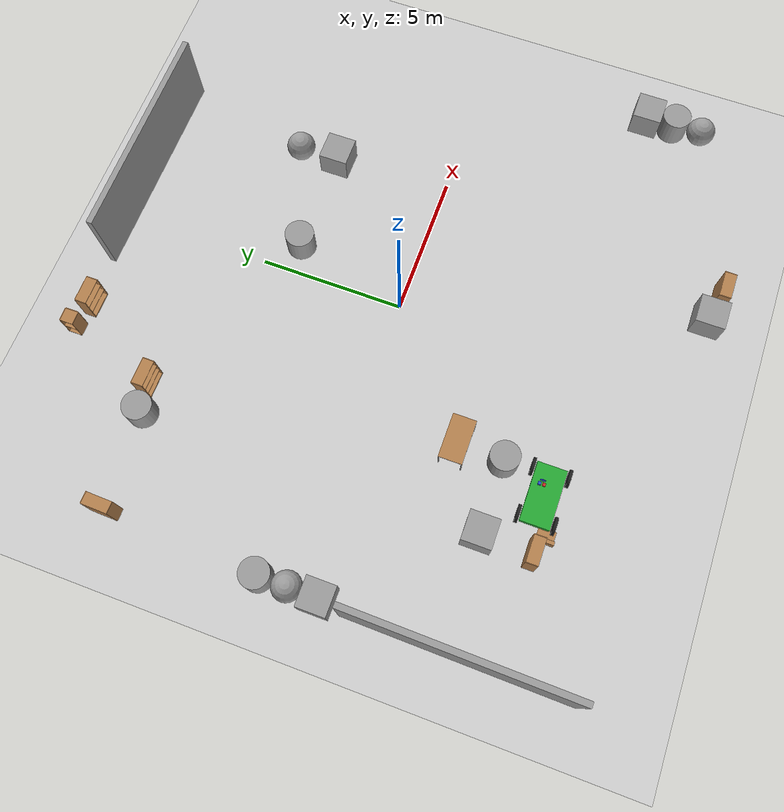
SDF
<sdf version="1.4">
 <world name="default">
  <light name="sun" type="directional">
   <pose>0 0 10 0 -0 0</pose>
   <diffuse>0.8 0.8 0.8 1</diffuse>
   <specular>0.2 0.2 0.2 1</specular>
   <attenuation>
    <range>1000</range>
    <constant>0.9</constant>
    <linear>0.01</linear>
    <quadratic>0.001</quadratic>
   </attenuation>
   <direction>-0.5 0.1 -0.9</direction>
  </light>
  <model name="ground_plane">
   <static>1</static>
   <link name="link">
    <collision name="collision">
     <geometry><plane><normal>0 0 1</normal><size>100 100</size></plane></geometry>
     <surface><friction><ode><mu>100</mu><mu2>50</mu2></ode></friction></surface>
    </collision>
    <visual name="visual">
     <cast_shadows>0</cast_shadows>
     <geometry><plane><normal>0 0 1</normal><size>100 100</size></plane></geometry>
     <material>
      <script><uri>file://media/materials/scripts/gazebo.material</uri><name>Gazebo/Grey</name></script>
     </material>
    </visual>
    <velocity_decay><linear>0</linear><angular>0</angular></velocity_decay>
   </link>
  </model>
  <physics type="ode">
   <max_step_size>0.001</max_step_size>
   <real_time_factor>1</real_time_factor>
   <real_time_update_rate>1000</real_time_update_rate>
   <gravity>0 0 -9.8</gravity>
  </physics>
  <scene><ambient>0.4 0.4 0.4 1</ambient><background>0.7 0.7 0.7 1</background><shadows>1</shadows></scene>
  <spherical_coordinates>
   <surface_model>EARTH_WGS84</surface_model>
   <latitude_deg>0</latitude_deg>
   <longitude_deg>0</longitude_deg>
   <elevation>0</elevation>
   <heading_deg>0</heading_deg>
  </spherical_coordinates>
  <model name="unit_box_1">
   <pose>3 -10 0.5 0 -0 0</pose>
   <link name="link">
    <inertial>
     <mass>1</mass>
     <inertia><ixx>1</ixx><ixy>0</ixy><ixz>0</ixz><iyy>1</iyy><iyz>0</iyz><izz>1</izz></inertia>
    </inertial>
    <collision name="collision"><geometry><box><size>1 1 1</size></box></geometry></collision>
    <visual name="visual">
     <geometry><box><size>1 1 1</size></box></geometry>
     <material>
      <script><uri>file://media/materials/scripts/gazebo.material</uri><name>Gazebo/Grey</name></script>
     </material>
    </visual>
    <velocity_decay><linear>0</linear><angular>0</angular></velocity_decay>
   </link>
   <static>0</static>
  </model>
  <model name="bookshelf">
   <static>1</static>
   <link name="link">
    <inertial><mass>1</mass></inertial>
    <collision name="back">
     <pose>0 0.005 0.6 0 -0 0</pose>
     <geometry><box><size>0.9 0.01 1.2</size></box></geometry>
    </collision>
    <visual name="visual1">
     <pose>0 0.005 0.6 0 -0 0</pose>
     <geometry><box><size>0.9 0.01 1.2</size></box></geometry>
     <material>
      <script><uri>file://media/materials/scripts/gazebo.material</uri><name>Gazebo/Wood</name></script>
     </material>
    </visual>
    <collision name="left_side">
     <pose>0.45 -0.195 0.6 0 -0 0</pose>
     <geometry><box><size>0.02 0.4 1.2</size></box></geometry>
    </collision>
    <visual name="visual2">
     <pose>0.45 -0.195 0.6 0 -0 0</pose>
     <geometry><box><size>0.02 0.4 1.2</size></box></geometry>
     <material>
      <script><uri>file://media/materials/scripts/gazebo.material</uri><name>Gazebo/Wood</name></script>
     </material>
    </visual>
    <collision name="right_side">
     <pose>-0.45 -0.195 0.6 0 -0 0</pose>
     <geometry><box><size>0.02 0.4 1.2</size></box></geometry>
    </collision>
    <visual name="visual3">
     <pose>-0.45 -0.195 0.6 0 -0 0</pose>
     <geometry><box><size>0.02 0.4 1.2</size></box></geometry>
     <material>
      <script><uri>file://media/materials/scripts/gazebo.material</uri><name>Gazebo/Wood</name></script>
     </material>
    </visual>
    <collision name="bottom">
     <pose>0 -0.195 0.03 0 -0 0</pose>
     <geometry><box><size>0.88 0.4 0.06</size></box></geometry>
    </collision>
    <visual name="visual4">
     <pose>0 -0.195 0.03 0 -0 0</pose>
     <geometry><box><size>0.88 0.4 0.06</size></box></geometry>
     <material>
      <script><uri>file://media/materials/scripts/gazebo.material</uri><name>Gazebo/Wood</name></script>
     </material>
    </visual>
    <collision name="top">
     <pose>0 -0.195 1.19 0 -0 0</pose>
     <geometry><box><size>0.88 0.4 0.02</size></box></geometry>
    </collision>
    <visual name="visual5">
     <pose>0 -0.195 1.19 0 -0 0</pose>
     <geometry><box><size>0.88 0.4 0.02</size></box></geometry>
     <material>
      <script><uri>file://media/materials/scripts/gazebo.material</uri><name>Gazebo/Wood</name></script>
     </material>
    </visual>
    <collision name="low_shelf">
     <pose>0 -0.195 0.43 0 -0 0</pose>
     <geometry><box><size>0.88 0.4 0.02</size></box></geometry>
    </collision>
    <visual name="visual6">
     <pose>0 -0.195 0.43 0 -0 0</pose>
     <geometry><box><size>0.88 0.4 0.02</size></box></geometry>
     <material>
      <script><uri>file://media/materials/scripts/gazebo.material</uri><name>Gazebo/Wood</name></script>
     </material>
    </visual>
    <collision name="high_shelf">
     <pose>0 -0.195 0.8 0 -0 0</pose>
     <geometry><box><size>0.88 0.4 0.02</size></box></geometry>
    </collision>
    <visual name="visual7">
     <pose>0 -0.195 0.8 0 -0 0</pose>
     <geometry><box><size>0.88 0.4 0.02</size></box></geometry>
     <material>
      <script><uri>file://media/materials/scripts/gazebo.material</uri><name>Gazebo/Wood</name></script>
     </material>
    </visual>
    <velocity_decay><linear>0</linear><angular>0</angular></velocity_decay>
   </link>
   <pose>4 -10 0 0 -0 0</pose>
  </model>
  <model name="unit_sphere_1">
   <pose>9.99986 -8.00047 0.5 0.000941 -0.000277 0.000347</pose>
   <link name="link">
    <inertial>
     <mass>1</mass>
     <inertia><ixx>1</ixx><ixy>0</ixy><ixz>0</ixz><iyy>1</iyy><iyz>0</iyz><izz>1</izz></inertia>
    </inertial>
    <collision name="collision"><geometry><sphere><radius>0.5</radius></sphere></geometry></collision>
    <visual name="visual">
     <geometry><sphere><radius>0.5</radius></sphere></geometry>
     <material>
      <script><uri>file://media/materials/scripts/gazebo.material</uri><name>Gazebo/Grey</name></script>
     </material>
    </visual>
    <velocity_decay><linear>0</linear><angular>0</angular></velocity_decay>
   </link>
   <static>0</static>
  </model>
  <model name="unit_cylinder_1">
   <pose>10 -7.00001 0.499991 -1e-06 1e-06 0</pose>
   <link name="link">
    <inertial>
     <mass>1</mass>
     <inertia><ixx>1</ixx><ixy>0</ixy><ixz>0</ixz><iyy>1</iyy><iyz>0</iyz><izz>1</izz></inertia>
    </inertial>
    <collision name="collision">
     <geometry><cylinder><radius>0.5</radius><length>1</length></cylinder></geometry>
    </collision>
    <visual name="visual">
     <geometry><cylinder><radius>0.5</radius><length>1</length></cylinder></geometry>
     <material>
      <script><uri>file://media/materials/scripts/gazebo.material</uri><name>Gazebo/Grey</name></script>
     </material>
    </visual>
    <velocity_decay><linear>0</linear><angular>0</angular></velocity_decay>
   </link>
   <static>0</static>
  </model>
  <model name="unit_box_2">
   <pose>10 -6 0.5 0 -0 0</pose>
   <link name="link">
    <inertial>
     <mass>1</mass>
     <inertia><ixx>1</ixx><ixy>0</ixy><ixz>0</ixz><iyy>1</iyy><iyz>0</iyz><izz>1</izz></inertia>
    </inertial>
    <collision name="collision"><geometry><box><size>1 1 1</size></box></geometry></collision>
    <visual name="visual">
     <geometry><box><size>1 1 1</size></box></geometry>
     <material>
      <script><uri>file://media/materials/scripts/gazebo.material</uri><name>Gazebo/Grey</name></script>
     </material>
    </visual>
    <velocity_decay><linear>0</linear><angular>0</angular></velocity_decay>
   </link>
   <static>0</static>
  </model>
  <model name="grey_wall">
   <static>1</static>
   <link name="link">
    <pose>0 0 1.4 0 -0 0</pose>
    <collision name="collision"><geometry><box><size>7.5 0.2 2.8</size></box></geometry></collision>
    <visual name="visual">
     <cast_shadows>0</cast_shadows>
     <geometry><box><size>7.5 0.2 2.8</size></box></geometry>
     <material>
      <script>
       <uri>model://grey_wall/materials/scripts</uri>
       <uri>model://grey_wall/materials/textures</uri>
       <name>vrc/grey_wall</name>
      </script>
     </material>
    </visual>
    <velocity_decay><linear>0</linear><angular>0</angular></velocity_decay>
   </link>
   <pose>2 10 0 0 -0 0</pose>
  </model>
  <model name="bookshelf_0">
   <static>1</static>
   <link name="link">
    <inertial><mass>1</mass></inertial>
    <collision name="back">
     <pose>0 0.005 0.6 0 -0 0</pose>
     <geometry><box><size>0.9 0.01 1.2</size></box></geometry>
    </collision>
    <visual name="visual1">
     <pose>0 0.005 0.6 0 -0 0</pose>
     <geometry><box><size>0.9 0.01 1.2</size></box></geometry>
     <material>
      <script><uri>file://media/materials/scripts/gazebo.material</uri><name>Gazebo/Wood</name></script>
     </material>
    </visual>
    <collision name="left_side">
     <pose>0.45 -0.195 0.6 0 -0 0</pose>
     <geometry><box><size>0.02 0.4 1.2</size></box></geometry>
    </collision>
    <visual name="visual2">
     <pose>0.45 -0.195 0.6 0 -0 0</pose>
     <geometry><box><size>0.02 0.4 1.2</size></box></geometry>
     <material>
      <script><uri>file://media/materials/scripts/gazebo.material</uri><name>Gazebo/Wood</name></script>
     </material>
    </visual>
    <collision name="right_side">
     <pose>-0.45 -0.195 0.6 0 -0 0</pose>
     <geometry><box><size>0.02 0.4 1.2</size></box></geometry>
    </collision>
    <visual name="visual3">
     <pose>-0.45 -0.195 0.6 0 -0 0</pose>
     <geometry><box><size>0.02 0.4 1.2</size></box></geometry>
     <material>
      <script><uri>file://media/materials/scripts/gazebo.material</uri><name>Gazebo/Wood</name></script>
     </material>
    </visual>
    <collision name="bottom">
     <pose>0 -0.195 0.03 0 -0 0</pose>
     <geometry><box><size>0.88 0.4 0.06</size></box></geometry>
    </collision>
    <visual name="visual4">
     <pose>0 -0.195 0.03 0 -0 0</pose>
     <geometry><box><size>0.88 0.4 0.06</size></box></geometry>
     <material>
      <script><uri>file://media/materials/scripts/gazebo.material</uri><name>Gazebo/Wood</name></script>
     </material>
    </visual>
    <collision name="top">
     <pose>0 -0.195 1.19 0 -0 0</pose>
     <geometry><box><size>0.88 0.4 0.02</size></box></geometry>
    </collision>
    <visual name="visual5">
     <pose>0 -0.195 1.19 0 -0 0</pose>
     <geometry><box><size>0.88 0.4 0.02</size></box></geometry>
     <material>
      <script><uri>file://media/materials/scripts/gazebo.material</uri><name>Gazebo/Wood</name></script>
     </material>
    </visual>
    <collision name="low_shelf">
     <pose>0 -0.195 0.43 0 -0 0</pose>
     <geometry><box><size>0.88 0.4 0.02</size></box></geometry>
    </collision>
    <visual name="visual6">
     <pose>0 -0.195 0.43 0 -0 0</pose>
     <geometry><box><size>0.88 0.4 0.02</size></box></geometry>
     <material>
      <script><uri>file://media/materials/scripts/gazebo.material</uri><name>Gazebo/Wood</name></script>
     </material>
    </visual>
    <collision name="high_shelf">
     <pose>0 -0.195 0.8 0 -0 0</pose>
     <geometry><box><size>0.88 0.4 0.02</size></box></geometry>
    </collision>
    <visual name="visual7">
     <pose>0 -0.195 0.8 0 -0 0</pose>
     <geometry><box><size>0.88 0.4 0.02</size></box></geometry>
     <material>
      <script><uri>file://media/materials/scripts/gazebo.material</uri><name>Gazebo/Wood</name></script>
     </material>
    </visual>
    <velocity_decay><linear>0</linear><angular>0</angular></velocity_decay>
   </link>
   <pose>-3.43645 10 0 0 -0 0</pose>
  </model>
  <model name="cabinet">
   <static>1</static>
   <link name="cabinet_bottom_plate">
    <inertial>
     <pose>0 0 -1 0 -0 0</pose>
     <inertia><ixx>2.05</ixx><ixy>0</ixy><ixz>0</ixz><iyy>2.05</iyy><iyz>0</iyz><izz>2.05</izz></inertia>
     <mass>25</mass>
    </inertial>
    <collision name="cabinet_bottom_plate_geom">
     <pose>0 0 0.01 0 -0 0</pose>
     <geometry><box><size>0.45 0.45 0.02</size></box></geometry>
    </collision>
    <visual name="cabinet_bottom_plate_geom_visual">
     <pose>0 0 0.01 0 -0 0</pose>
     <geometry><box><size>0.45 0.45 0.02</size></box></geometry>
     <material>
      <script><uri>file://media/materials/scripts/gazebo.material</uri><name>Gazebo/Wood</name></script>
     </material>
    </visual>
    <collision name="cabinet_bottom_plate_geom_cabinet_back_plate">
     <pose>0.235 0 0.51 0 -0 0</pose>
     <geometry><box><size>0.02 0.45 1.02</size></box></geometry>
    </collision>
    <visual name="cabinet_bottom_plate_geom_cabinet_back_plate_visual">
     <pose>0.235 0 0.51 0 -0 0</pose>
     <geometry><box><size>0.02 0.45 1.02</size></box></geometry>
     <material>
      <script><uri>file://media/materials/scripts/gazebo.material</uri><name>Gazebo/Wood</name></script>
     </material>
    </visual>
    <collision name="cabinet_bottom_plate_geom_cabinet_left_plate">
     <pose>0 0.235 0.51 0 -0 0</pose>
     <geometry><box><size>0.45 0.02 1.02</size></box></geometry>
    </collision>
    <visual name="cabinet_bottom_plate_geom_cabinet_left_plate_visual">
     <pose>0 0.235 0.51 0 -0 0</pose>
     <geometry><box><size>0.45 0.02 1.02</size></box></geometry>
     <material>
      <script><uri>file://media/materials/scripts/gazebo.material</uri><name>Gazebo/Wood</name></script>
     </material>
    </visual>
    <collision name="cabinet_bottom_plate_geom_cabinet_middle_plate">
     <pose>0 0 0.51 0 -0 0</pose>
     <geometry><box><size>0.45 0.45 0.02</size></box></geometry>
    </collision>
    <visual name="cabinet_bottom_plate_geom_cabinet_middle_plate_visual">
     <pose>0 0 0.51 0 -0 0</pose>
     <geometry><box><size>0.45 0.45 0.02</size></box></geometry>
     <material>
      <script><uri>file://media/materials/scripts/gazebo.material</uri><name>Gazebo/Wood</name></script>
     </material>
    </visual>
    <collision name="cabinet_bottom_plate_geom_cabinet_right_plate">
     <pose>0 -0.235 0.51 0 -0 0</pose>
     <geometry><box><size>0.45 0.02 1.02</size></box></geometry>
    </collision>
    <visual name="cabinet_bottom_plate_geom_cabinet_right_plate_visual">
     <pose>0 -0.235 0.51 0 -0 0</pose>
     <geometry><box><size>0.45 0.02 1.02</size></box></geometry>
     <material>
      <script><uri>file://media/materials/scripts/gazebo.material</uri><name>Gazebo/Wood</name></script>
     </material>
    </visual>
    <collision name="cabinet_bottom_plate_geom_cabinet_top_plate">
     <pose>0 0 1.01 0 -0 0</pose>
     <geometry><box><size>0.45 0.45 0.02</size></box></geometry>
    </collision>
    <visual name="cabinet_bottom_plate_geom_cabinet_top_plate_visual">
     <pose>0 0 1.01 0 -0 0</pose>
     <geometry><box><size>0.45 0.45 0.02</size></box></geometry>
     <material>
      <script><uri>file://media/materials/scripts/gazebo.material</uri><name>Gazebo/Wood</name></script>
     </material>
    </visual>
    <velocity_decay><linear>0</linear><angular>0</angular></velocity_decay>
   </link>
   <pose>-4.43052 10 0 0 -0 0</pose>
  </model>
  <model name="grey_wall_0">
   <static>1</static>
   <link name="link">
    <pose>0 0 1.4 0 -0 0</pose>
    <collision name="collision"><geometry><box><size>7.5 0.2 2.8</size></box></geometry></collision>
    <visual name="visual">
     <cast_shadows>0</cast_shadows>
     <geometry><box><size>7.5 0.2 2.8</size></box></geometry>
     <material>
      <script>
       <uri>model://grey_wall/materials/scripts</uri>
       <uri>model://grey_wall/materials/textures</uri>
       <name>vrc/grey_wall</name>
      </script>
     </material>
    </visual>
    <velocity_decay><linear>0</linear><angular>0</angular></velocity_decay>
   </link>
   <pose>-10.1834 -5.51808 0 0 -0 1.56093</pose>
  </model>
  <model name="unit_box_3">
   <pose>-10 -1 0.5 0 -0 0</pose>
   <link name="link">
    <inertial>
     <mass>1</mass>
     <inertia><ixx>1</ixx><ixy>0</ixy><ixz>0</ixz><iyy>1</iyy><iyz>0</iyz><izz>1</izz></inertia>
    </inertial>
    <collision name="collision"><geometry><box><size>1 1 1</size></box></geometry></collision>
    <visual name="visual">
     <geometry><box><size>1 1 1</size></box></geometry>
     <material>
      <script><uri>file://media/materials/scripts/gazebo.material</uri><name>Gazebo/Grey</name></script>
     </material>
    </visual>
    <velocity_decay><linear>0</linear><angular>0</angular></velocity_decay>
   </link>
   <static>0</static>
  </model>
  <model name="unit_sphere_2">
   <pose>-10.0001 7.6e-05 0.5 -0.000892 -0.000205 -0.000256</pose>
   <link name="link">
    <inertial>
     <mass>1</mass>
     <inertia><ixx>1</ixx><ixy>0</ixy><ixz>0</ixz><iyy>1</iyy><iyz>0</iyz><izz>1</izz></inertia>
    </inertial>
    <collision name="collision"><geometry><sphere><radius>0.5</radius></sphere></geometry></collision>
    <visual name="visual">
     <geometry><sphere><radius>0.5</radius></sphere></geometry>
     <material>
      <script><uri>file://media/materials/scripts/gazebo.material</uri><name>Gazebo/Grey</name></script>
     </material>
    </visual>
    <velocity_decay><linear>0</linear><angular>0</angular></velocity_decay>
   </link>
   <static>0</static>
  </model>
  <model name="unit_cylinder_2">
   <pose>-10 1.0004 0.499995 -0 -0 -0</pose>
   <link name="link">
    <inertial>
     <mass>1</mass>
     <inertia><ixx>1</ixx><ixy>0</ixy><ixz>0</ixz><iyy>1</iyy><iyz>0</iyz><izz>1</izz></inertia>
    </inertial>
    <collision name="collision">
     <geometry><cylinder><radius>0.5</radius><length>1</length></cylinder></geometry>
    </collision>
    <visual name="visual">
     <geometry><cylinder><radius>0.5</radius><length>1</length></cylinder></geometry>
     <material>
      <script><uri>file://media/materials/scripts/gazebo.material</uri><name>Gazebo/Grey</name></script>
     </material>
    </visual>
    <velocity_decay><linear>0</linear><angular>0</angular></velocity_decay>
   </link>
   <static>0</static>
  </model>
  <model name="bookshelf_1">
   <static>1</static>
   <link name="link">
    <inertial><mass>1</mass></inertial>
    <collision name="back">
     <pose>0 0.005 0.6 0 -0 0</pose>
     <geometry><box><size>0.9 0.01 1.2</size></box></geometry>
    </collision>
    <visual name="visual1">
     <pose>0 0.005 0.6 0 -0 0</pose>
     <geometry><box><size>0.9 0.01 1.2</size></box></geometry>
     <material>
      <script><uri>file://media/materials/scripts/gazebo.material</uri><name>Gazebo/Wood</name></script>
     </material>
    </visual>
    <collision name="left_side">
     <pose>0.45 -0.195 0.6 0 -0 0</pose>
     <geometry><box><size>0.02 0.4 1.2</size></box></geometry>
    </collision>
    <visual name="visual2">
     <pose>0.45 -0.195 0.6 0 -0 0</pose>
     <geometry><box><size>0.02 0.4 1.2</size></box></geometry>
     <material>
      <script><uri>file://media/materials/scripts/gazebo.material</uri><name>Gazebo/Wood</name></script>
     </material>
    </visual>
    <collision name="right_side">
     <pose>-0.45 -0.195 0.6 0 -0 0</pose>
     <geometry><box><size>0.02 0.4 1.2</size></box></geometry>
    </collision>
    <visual name="visual3">
     <pose>-0.45 -0.195 0.6 0 -0 0</pose>
     <geometry><box><size>0.02 0.4 1.2</size></box></geometry>
     <material>
      <script><uri>file://media/materials/scripts/gazebo.material</uri><name>Gazebo/Wood</name></script>
     </material>
    </visual>
    <collision name="bottom">
     <pose>0 -0.195 0.03 0 -0 0</pose>
     <geometry><box><size>0.88 0.4 0.06</size></box></geometry>
    </collision>
    <visual name="visual4">
     <pose>0 -0.195 0.03 0 -0 0</pose>
     <geometry><box><size>0.88 0.4 0.06</size></box></geometry>
     <material>
      <script><uri>file://media/materials/scripts/gazebo.material</uri><name>Gazebo/Wood</name></script>
     </material>
    </visual>
    <collision name="top">
     <pose>0 -0.195 1.19 0 -0 0</pose>
     <geometry><box><size>0.88 0.4 0.02</size></box></geometry>
    </collision>
    <visual name="visual5">
     <pose>0 -0.195 1.19 0 -0 0</pose>
     <geometry><box><size>0.88 0.4 0.02</size></box></geometry>
     <material>
      <script><uri>file://media/materials/scripts/gazebo.material</uri><name>Gazebo/Wood</name></script>
     </material>
    </visual>
    <collision name="low_shelf">
     <pose>0 -0.195 0.43 0 -0 0</pose>
     <geometry><box><size>0.88 0.4 0.02</size></box></geometry>
    </collision>
    <visual name="visual6">
     <pose>0 -0.195 0.43 0 -0 0</pose>
     <geometry><box><size>0.88 0.4 0.02</size></box></geometry>
     <material>
      <script><uri>file://media/materials/scripts/gazebo.material</uri><name>Gazebo/Wood</name></script>
     </material>
    </visual>
    <collision name="high_shelf">
     <pose>0 -0.195 0.8 0 -0 0</pose>
     <geometry><box><size>0.88 0.4 0.02</size></box></geometry>
    </collision>
    <visual name="visual7">
     <pose>0 -0.195 0.8 0 -0 0</pose>
     <geometry><box><size>0.88 0.4 0.02</size></box></geometry>
     <material>
      <script><uri>file://media/materials/scripts/gazebo.material</uri><name>Gazebo/Wood</name></script>
     </material>
    </visual>
    <velocity_decay><linear>0</linear><angular>0</angular></velocity_decay>
   </link>
   <pose>-9.91155 6.31926 0 0 -0 1.54729</pose>
  </model>
  <model name="bookshelf_2">
   <static>1</static>
   <link name="link">
    <inertial><mass>1</mass></inertial>
    <collision name="back">
     <pose>0 0.005 0.6 0 -0 0</pose>
     <geometry><box><size>0.9 0.01 1.2</size></box></geometry>
    </collision>
    <visual name="visual1">
     <pose>0 0.005 0.6 0 -0 0</pose>
     <geometry><box><size>0.9 0.01 1.2</size></box></geometry>
     <material>
      <script><uri>file://media/materials/scripts/gazebo.material</uri><name>Gazebo/Wood</name></script>
     </material>
    </visual>
    <collision name="left_side">
     <pose>0.45 -0.195 0.6 0 -0 0</pose>
     <geometry><box><size>0.02 0.4 1.2</size></box></geometry>
    </collision>
    <visual name="visual2">
     <pose>0.45 -0.195 0.6 0 -0 0</pose>
     <geometry><box><size>0.02 0.4 1.2</size></box></geometry>
     <material>
      <script><uri>file://media/materials/scripts/gazebo.material</uri><name>Gazebo/Wood</name></script>
     </material>
    </visual>
    <collision name="right_side">
     <pose>-0.45 -0.195 0.6 0 -0 0</pose>
     <geometry><box><size>0.02 0.4 1.2</size></box></geometry>
    </collision>
    <visual name="visual3">
     <pose>-0.45 -0.195 0.6 0 -0 0</pose>
     <geometry><box><size>0.02 0.4 1.2</size></box></geometry>
     <material>
      <script><uri>file://media/materials/scripts/gazebo.material</uri><name>Gazebo/Wood</name></script>
     </material>
    </visual>
    <collision name="bottom">
     <pose>0 -0.195 0.03 0 -0 0</pose>
     <geometry><box><size>0.88 0.4 0.06</size></box></geometry>
    </collision>
    <visual name="visual4">
     <pose>0 -0.195 0.03 0 -0 0</pose>
     <geometry><box><size>0.88 0.4 0.06</size></box></geometry>
     <material>
      <script><uri>file://media/materials/scripts/gazebo.material</uri><name>Gazebo/Wood</name></script>
     </material>
    </visual>
    <collision name="top">
     <pose>0 -0.195 1.19 0 -0 0</pose>
     <geometry><box><size>0.88 0.4 0.02</size></box></geometry>
    </collision>
    <visual name="visual5">
     <pose>0 -0.195 1.19 0 -0 0</pose>
     <geometry><box><size>0.88 0.4 0.02</size></box></geometry>
     <material>
      <script><uri>file://media/materials/scripts/gazebo.material</uri><name>Gazebo/Wood</name></script>
     </material>
    </visual>
    <collision name="low_shelf">
     <pose>0 -0.195 0.43 0 -0 0</pose>
     <geometry><box><size>0.88 0.4 0.02</size></box></geometry>
    </collision>
    <visual name="visual6">
     <pose>0 -0.195 0.43 0 -0 0</pose>
     <geometry><box><size>0.88 0.4 0.02</size></box></geometry>
     <material>
      <script><uri>file://media/materials/scripts/gazebo.material</uri><name>Gazebo/Wood</name></script>
     </material>
    </visual>
    <collision name="high_shelf">
     <pose>0 -0.195 0.8 0 -0 0</pose>
     <geometry><box><size>0.88 0.4 0.02</size></box></geometry>
    </collision>
    <visual name="visual7">
     <pose>0 -0.195 0.8 0 -0 0</pose>
     <geometry><box><size>0.88 0.4 0.02</size></box></geometry>
     <material>
      <script><uri>file://media/materials/scripts/gazebo.material</uri><name>Gazebo/Wood</name></script>
     </material>
    </visual>
    <velocity_decay><linear>0</linear><angular>0</angular></velocity_decay>
   </link>
   <pose>-6.50414 -6.56182 0 0 -0 0</pose>
  </model>
  <model name="wooden_case_metal_peg">
   <link name="wooden_case::base">
    <pose>0 0 0.024 0 -0 0</pose>
    <inertial>
     <pose>-0.0221845 0 0.171592 0 -0 0</pose>
     <mass>3.96264</mass>
     <inertia>
      <ixx>0.213536</ixx>
      <ixy>0</ixy>
      <ixz>0.000779377</ixz>
      <iyy>0.0708943</iyy>
      <iyz>0</iyz>
      <izz>0.154604</izz>
     </inertia>
    </inertial>
    <collision name="collision_back">
     <pose>-0.053975 0 0.1778 0 -0 0</pose>
     <geometry><box><size>0.01905 0.5461 0.3175</size></box></geometry>
     <surface><contact><ode><max_vel>0.1</max_vel><min_depth>0.001</min_depth></ode></contact></surface>
    </collision>
    <visual name="visual_back">
     <pose>-0.053975 0 0.1778 0 -0 0</pose>
     <geometry><box><size>0.01905 0.5461 0.3175</size></box></geometry>
     <material>
      <script><uri>file://media/materials/scripts/gazebo.material</uri><name>Gazebo/Wood</name></script>
     </material>
    </visual>
    <collision name="collision_bottom">
     <pose>0 0 0.009525 0 -0 0</pose>
     <geometry><box><size>0.127 0.5842 0.01905</size></box></geometry>
     <surface><contact><ode><max_vel>0.1</max_vel><min_depth>0.001</min_depth></ode></contact></surface>
    </collision>
    <visual name="visual_bottom">
     <pose>0 0 0.009525 0 -0 0</pose>
     <geometry><box><size>0.127 0.5842 0.01905</size></box></geometry>
     <material>
      <script><uri>file://media/materials/scripts/gazebo.material</uri><name>Gazebo/Wood</name></script>
     </material>
    </visual>
    <collision name="collision_top">
     <pose>0 0 0.346075 0 -0 0</pose>
     <geometry><box><size>0.127 0.5842 0.01905</size></box></geometry>
     <surface><contact><ode><max_vel>0.1</max_vel><min_depth>0.001</min_depth></ode></contact></surface>
    </collision>
    <visual name="visual_top">
     <pose>0 0 0.346075 0 -0 0</pose>
     <geometry><box><size>0.127 0.5842 0.01905</size></box></geometry>
     <material>
      <script><uri>file://media/materials/scripts/gazebo.material</uri><name>Gazebo/Wood</name></script>
     </material>
    </visual>
    <collision name="collision_left">
     <pose>0 -0.282575 0.1778 0 -0 0</pose>
     <geometry><box><size>0.127 0.01905 0.3175</size></box></geometry>
     <surface><contact><ode><max_vel>0.1</max_vel><min_depth>0.001</min_depth></ode></contact></surface>
    </collision>
    <visual name="visual_left">
     <pose>0 -0.282575 0.1778 0 -0 0</pose>
     <geometry><box><size>0.127 0.01905 0.3175</size></box></geometry>
     <material>
      <script><uri>file://media/materials/scripts/gazebo.material</uri><name>Gazebo/Wood</name></script>
     </material>
    </visual>
    <collision name="collision_right">
     <pose>0 0.282575 0.1778 0 -0 0</pose>
     <geometry><box><size>0.127 0.01905 0.3175</size></box></geometry>
     <surface><contact><ode><max_vel>0.1</max_vel><min_depth>0.001</min_depth></ode></contact></surface>
    </collision>
    <visual name="visual_right">
     <pose>0 0.282575 0.1778 0 -0 0</pose>
     <geometry><box><size>0.127 0.01905 0.3175</size></box></geometry>
     <material>
      <script><uri>file://media/materials/scripts/gazebo.material</uri><name>Gazebo/Wood</name></script>
     </material>
    </visual>
    <collision name="collision_block_left">
     <pose>0.0095 -0.2151 -0.012 0 -0 0</pose>
     <geometry><box><size>0.108 0.05 0.024</size></box></geometry>
     <surface><contact><ode><max_vel>0.1</max_vel><min_depth>0.001</min_depth></ode></contact></surface>
    </collision>
    <visual name="visual_block_left">
     <pose>0.0095 -0.2151 -0.012 0 -0 0</pose>
     <geometry><box><size>0.108 0.05 0.024</size></box></geometry>
     <material>
      <script><uri>file://media/materials/scripts/gazebo.material</uri><name>Gazebo/Wood</name></script>
     </material>
    </visual>
    <collision name="collision_block_right">
     <pose>0.0095 0.2151 -0.012 0 -0 0</pose>
     <geometry><box><size>0.108 0.05 0.024</size></box></geometry>
     <surface><contact><ode><max_vel>0.1</max_vel><min_depth>0.001</min_depth></ode></contact></surface>
    </collision>
    <visual name="visual_block_right">
     <pose>0.0095 0.2151 -0.012 0 -0 0</pose>
     <geometry><box><size>0.108 0.05 0.024</size></box></geometry>
     <material>
      <script><uri>file://media/materials/scripts/gazebo.material</uri><name>Gazebo/Wood</name></script>
     </material>
    </visual>
    <velocity_decay><linear>0</linear><angular>0</angular></velocity_decay>
   </link>
   <link name="wooden_case::lid">
    <pose>0.243775 0 0.009525 0 -0 0</pose>
    <inertial>
     <mass>1.97874</mass>
     <inertia>
      <ixx>0.0563367</ixx>
      <ixy>0</ixy>
      <ixz>0</ixz>
      <iyy>0.020911</iyy>
      <iyz>0</iyz>
      <izz>0.0771281</izz>
     </inertia>
    </inertial>
    <collision name="collision">
     <geometry><box><size>0.3556 0.5842 0.01905</size></box></geometry>
     <surface><contact><ode><max_vel>0.1</max_vel><min_depth>0.001</min_depth></ode></contact></surface>
    </collision>
    <visual name="visual">
     <geometry><box><size>0.3556 0.5842 0.01905</size></box></geometry>
     <material>
      <script><uri>file://media/materials/scripts/gazebo.material</uri><name>Gazebo/Wood</name></script>
     </material>
    </visual>
    <visual name="tee_nut_1">
     <pose>0.122 -0.216 0 0 -0 0</pose>
     <geometry><cylinder><radius>0.00635</radius><length>0.0192405</length></cylinder></geometry>
     <material>
      <script><uri>file://media/materials/scripts/gazebo.material</uri><name>Gazebo/Grey</name></script>
     </material>
    </visual>
    <visual name="tee_nut_2">
     <pose>0.122 -0.088 0 0 -0 0</pose>
     <geometry><cylinder><radius>0.00635</radius><length>0.0192405</length></cylinder></geometry>
     <material>
      <script><uri>file://media/materials/scripts/gazebo.material</uri><name>Gazebo/Grey</name></script>
     </material>
    </visual>
    <visual name="tee_nut_3">
     <pose>0.122 0.088 0 0 -0 0</pose>
     <geometry><cylinder><radius>0.00635</radius><length>0.0192405</length></cylinder></geometry>
     <material>
      <script><uri>file://media/materials/scripts/gazebo.material</uri><name>Gazebo/Grey</name></script>
     </material>
    </visual>
    <visual name="tee_nut_4">
     <pose>0.122 0.216 0 0 -0 0</pose>
     <geometry><cylinder><radius>0.00635</radius><length>0.0192405</length></cylinder></geometry>
     <material>
      <script><uri>file://media/materials/scripts/gazebo.material</uri><name>Gazebo/Grey</name></script>
     </material>
    </visual>
    <velocity_decay><linear>0</linear><angular>0</angular></velocity_decay>
   </link>
   <joint name="wooden_case::lid_hinge" type="revolute">
    <pose>-0.1778 0 0.01905 0 -0 0</pose>
    <parent>wooden_case::base</parent>
    <child>wooden_case::lid</child>
    <axis><xyz>0 1 0</xyz><limit><upper>0.523599</upper><lower>-1.5708</lower></limit></axis>
   </joint>
   <link name="peg::link">
    <pose>0.365774 0.216 0.05005 0 -0 0</pose>
    <inertial>
     <mass>0.0121</mass>
     <inertia>
      <ixx>3.90898e-06</ixx>
      <ixy>0</ixy>
      <ixz>0</ixz>
      <iyy>3.90898e-06</iyy>
      <iyz>0</iyz>
      <izz>6.58845e-08</izz>
     </inertia>
    </inertial>
    <collision name="collision">
     <geometry><cylinder><radius>0.0033</radius><length>0.062</length></cylinder></geometry>
    </collision>
    <visual name="visual">
     <geometry><cylinder><radius>0.0033</radius><length>0.062</length></cylinder></geometry>
     <material>
      <script><uri>file://media/materials/scripts/gazebo.material</uri><name>Gazebo/Grey</name></script>
     </material>
    </visual>
    <velocity_decay><linear>0</linear><angular>0</angular></velocity_decay>
   </link>
   <joint name="case_peg" type="revolute">
    <child>peg::link</child>
    <parent>wooden_case::lid</parent>
    <axis><xyz>0 0 1</xyz><limit><upper>0</upper><lower>0</lower></limit></axis>
   </joint>
   <pose>-5.98092 -7.00036 -4.7e-05 2e-06 -0.000665 -0.012428</pose>
   <static>0</static>
  </model>
  <model name="car">
   <link name="chassis">
    <pose>0 0 0.3 0 -0 0</pose>
    <collision name="collision"><geometry><box><size>2 1 0.2</size></box></geometry></collision>
    <visual name="visual">
     <geometry><box><size>2 1 0.2</size></box></geometry>
     <material>
      <script><uri>file://media/materials/scripts/gazebo.material</uri><name>Gazebo/Green</name></script>
     </material>
    </visual>
    <velocity_decay><linear>0</linear><angular>0</angular></velocity_decay>
    <inertial>
     <inertia><ixx>1</ixx><ixy>0</ixy><ixz>0</ixz><iyy>1</iyy><iyz>0</iyz><izz>1</izz></inertia>
     <mass>1</mass>
    </inertial>
   </link>
   <link name="front_left_wheel">
    <pose>0.8 0.6 0.3 0 1.5707 1.5707</pose>
    <collision name="collision">
     <geometry><cylinder><radius>0.3</radius><length>0.1</length></cylinder></geometry>
    </collision>
    <visual name="visual">
     <geometry><cylinder><radius>0.3</radius><length>0.1</length></cylinder></geometry>
     <material>
      <script><uri>file://media/materials/scripts/gazebo.material</uri><name>Gazebo/Black</name></script>
     </material>
    </visual>
    <velocity_decay><linear>0</linear><angular>0</angular></velocity_decay>
    <inertial>
     <inertia><ixx>1</ixx><ixy>0</ixy><ixz>0</ixz><iyy>1</iyy><iyz>0</iyz><izz>1</izz></inertia>
     <mass>1</mass>
    </inertial>
   </link>
   <link name="front_right_wheel">
    <pose>0.8 -0.6 0.3 0 1.5707 1.5707</pose>
    <collision name="collision">
     <geometry><cylinder><radius>0.3</radius><length>0.1</length></cylinder></geometry>
    </collision>
    <visual name="visual">
     <geometry><cylinder><radius>0.3</radius><length>0.1</length></cylinder></geometry>
     <material>
      <script><uri>file://media/materials/scripts/gazebo.material</uri><name>Gazebo/Black</name></script>
     </material>
    </visual>
    <velocity_decay><linear>0</linear><angular>0</angular></velocity_decay>
    <inertial>
     <inertia><ixx>1</ixx><ixy>0</ixy><ixz>0</ixz><iyy>1</iyy><iyz>0</iyz><izz>1</izz></inertia>
     <mass>1</mass>
    </inertial>
   </link>
   <link name="back_right_wheel">
    <pose>-0.8 -0.6 0.3 0 1.5707 1.5707</pose>
    <collision name="collision">
     <geometry><cylinder><radius>0.3</radius><length>0.1</length></cylinder></geometry>
    </collision>
    <visual name="visual">
     <geometry><cylinder><radius>0.3</radius><length>0.1</length></cylinder></geometry>
     <material>
      <script><uri>file://media/materials/scripts/gazebo.material</uri><name>Gazebo/Black</name></script>
     </material>
    </visual>
    <velocity_decay><linear>0</linear><angular>0</angular></velocity_decay>
    <inertial>
     <inertia><ixx>1</ixx><ixy>0</ixy><ixz>0</ixz><iyy>1</iyy><iyz>0</iyz><izz>1</izz></inertia>
     <mass>1</mass>
    </inertial>
   </link>
   <link name="back_left_wheel">
    <pose>-0.8 0.6 0.3 0 1.5707 1.5707</pose>
    <collision name="collision">
     <geometry><cylinder><radius>0.3</radius><length>0.1</length></cylinder></geometry>
    </collision>
    <visual name="visual">
     <geometry><cylinder><radius>0.3</radius><length>0.1</length></cylinder></geometry>
     <material>
      <script><uri>file://media/materials/scripts/gazebo.material</uri><name>Gazebo/Black</name></script>
     </material>
    </visual>
    <velocity_decay><linear>0</linear><angular>0</angular></velocity_decay>
    <inertial>
     <inertia><ixx>1</ixx><ixy>0</ixy><ixz>0</ixz><iyy>1</iyy><iyz>0</iyz><izz>1</izz></inertia>
     <mass>1</mass>
    </inertial>
   </link>
   <link name="gas_pedal">
    <pose>0.3 0.1 0.5 0 -0 0</pose>
    <collision name="collision"><geometry><box><size>0.1 0.1 0.1</size></box></geometry></collision>
    <visual name="visual">
     <geometry><box><size>0.1 0.1 0.1</size></box></geometry>
     <material>
      <script><uri>file://media/materials/scripts/gazebo.material</uri><name>Gazebo/Red</name></script>
     </material>
    </visual>
    <velocity_decay><linear>0</linear><angular>0</angular></velocity_decay>
    <inertial>
     <inertia><ixx>1</ixx><ixy>0</ixy><ixz>0</ixz><iyy>1</iyy><iyz>0</iyz><izz>1</izz></inertia>
     <mass>1</mass>
    </inertial>
   </link>
   <link name="brake_pedal">
    <pose>0.3 0.25 0.5 0 -0 0</pose>
    <collision name="collision"><geometry><box><size>0.1 0.1 0.1</size></box></geometry></collision>
    <visual name="visual">
     <geometry><box><size>0.1 0.1 0.1</size></box></geometry>
     <material>
      <script><uri>file://media/materials/scripts/gazebo.material</uri><name>Gazebo/Blue</name></script>
     </material>
    </visual>
    <velocity_decay><linear>0</linear><angular>0</angular></velocity_decay>
    <inertial>
     <inertia><ixx>1</ixx><ixy>0</ixy><ixz>0</ixz><iyy>1</iyy><iyz>0</iyz><izz>1</izz></inertia>
     <mass>1</mass>
    </inertial>
   </link>
   <link name="steering_wheel">
    <pose>0.3 0.2 1 0 1.5707 0</pose>
    <collision name="collision">
     <geometry><cylinder><radius>0.1</radius><length>0.01</length></cylinder></geometry>
    </collision>
    <visual name="visual">
     <geometry><cylinder><radius>0.1</radius><length>0.01</length></cylinder></geometry>
     <material>
      <script><uri>file://media/materials/scripts/gazebo.material</uri><name>Gazebo/Blue</name></script>
     </material>
    </visual>
    <velocity_decay><linear>0</linear><angular>0</angular></velocity_decay>
    <inertial>
     <inertia><ixx>1</ixx><ixy>0</ixy><ixz>0</ixz><iyy>1</iyy><iyz>0</iyz><izz>1</izz></inertia>
     <mass>1</mass>
    </inertial>
   </link>
   <joint name="gas_joint" type="prismatic">
    <parent>chassis</parent>
    <child>gas_pedal</child>
    <axis><xyz>1 0 0</xyz><limit><lower>0</lower><upper>0.2</upper></limit></axis>
   </joint>
   <joint name="brake_joint" type="prismatic">
    <parent>chassis</parent>
    <child>brake_pedal</child>
    <axis><xyz>1 0 0</xyz><limit><lower>0</lower><upper>0.2</upper></limit></axis>
   </joint>
   <joint name="steering_joint" type="revolute">
    <parent>chassis</parent>
    <child>steering_wheel</child>
    <axis><xyz>1 0 0</xyz><limit><lower>-7.853</lower><upper>7.853</upper></limit></axis>
   </joint>
   <joint name="front_left_joint" type="revolute2">
    <parent>chassis</parent>
    <child>front_left_wheel</child>
    <axis><xyz>0 0 1</xyz><limit><lower>8.59643e-06</lower><upper>8.59643e-06</upper></limit></axis>
    <axis2><xyz>0 1 0</xyz></axis2>
    <physics><ode><limit><cfm>0</cfm><erp>0.9</erp></limit></ode></physics>
   </joint>
   <joint name="front_right_joint" type="revolute2">
    <parent>chassis</parent>
    <child>front_right_wheel</child>
    <axis><xyz>0 0 1</xyz><limit><lower>8.59643e-06</lower><upper>8.59643e-06</upper></limit></axis>
    <axis2><xyz>0 1 0</xyz></axis2>
    <physics><ode><limit><cfm>0</cfm><erp>0.9</erp></limit></ode></physics>
   </joint>
   <joint name="back_right_joint" type="revolute2">
    <parent>chassis</parent>
    <child>back_right_wheel</child>
    <axis><xyz>0 0 1</xyz><limit><lower>0</lower><upper>0</upper></limit></axis>
    <axis2><xyz>0 1 0</xyz></axis2>
    <physics><ode><limit><cfm>0</cfm><erp>0.9</erp></limit></ode></physics>
   </joint>
   <joint name="back_left_joint" type="revolute2">
    <parent>chassis</parent>
    <child>back_left_wheel</child>
    <axis><xyz>0 0 1</xyz><limit><lower>0</lower><upper>0</upper></limit></axis>
    <axis2><xyz>0 1 0</xyz></axis2>
    <physics><ode><limit><cfm>0</cfm><erp>0.9</erp></limit></ode></physics>
   </joint>
   <plugin name="vehicle" filename="libVehiclePlugin.so">
    <front_left>front_left_joint</front_left>
    <front_right>front_right_joint</front_right>
    <back_left>back_left_joint</back_left>
    <back_right>back_right_joint</back_right>
    <gas>gas_joint</gas>
    <brake>brake_joint</brake>
    <steering>steering_joint</steering>
    <front_power>10</front_power>
    <rear_power>10</rear_power>
    <tire_angle_range>0.5</tire_angle_range>
    <max_speed>10</max_speed>
    <aero_load>0.1</aero_load>
   </plugin>
   <pose>-4.65637 -6.53948 -0.002616 -0.000273 0.000907 0.001082</pose>
   <static>0</static>
  </model>
  <model name="table">
   <static>1</static>
   <link name="link">
    <collision name="surface">
     <pose>0 0 1 0 -0 0</pose>
     <geometry><box><size>1.5 0.8 0.03</size></box></geometry>
     <surface><friction><ode><mu>0.6</mu><mu2>0.6</mu2></ode></friction></surface>
    </collision>
    <visual name="visual1">
     <pose>0 0 1 0 -0 0</pose>
     <geometry><box><size>1.5 0.8 0.03</size></box></geometry>
     <material>
      <script><uri>file://media/materials/scripts/gazebo.material</uri><name>Gazebo/Wood</name></script>
     </material>
    </visual>
    <collision name="front_left_leg">
     <pose>0.68 0.38 0.5 0 -0 0</pose>
     <geometry><cylinder><radius>0.02</radius><length>1</length></cylinder></geometry>
    </collision>
    <visual name="front_left_leg">
     <pose>0.68 0.38 0.5 0 -0 0</pose>
     <geometry><cylinder><radius>0.02</radius><length>1</length></cylinder></geometry>
     <material>
      <script><uri>file://media/materials/scripts/gazebo.material</uri><name>Gazebo/Grey</name></script>
     </material>
    </visual>
    <collision name="front_right_leg">
     <pose>0.68 -0.38 0.5 0 -0 0</pose>
     <geometry><cylinder><radius>0.02</radius><length>1</length></cylinder></geometry>
    </collision>
    <visual name="front_right_leg">
     <pose>0.68 -0.38 0.5 0 -0 0</pose>
     <geometry><cylinder><radius>0.02</radius><length>1</length></cylinder></geometry>
     <material>
      <script><uri>file://media/materials/scripts/gazebo.material</uri><name>Gazebo/Grey</name></script>
     </material>
    </visual>
    <collision name="back_right_leg">
     <pose>-0.68 -0.38 0.5 0 -0 0</pose>
     <geometry><cylinder><radius>0.02</radius><length>1</length></cylinder></geometry>
    </collision>
    <visual name="back_right_leg">
     <pose>-0.68 -0.38 0.5 0 -0 0</pose>
     <geometry><cylinder><radius>0.02</radius><length>1</length></cylinder></geometry>
     <material>
      <script><uri>file://media/materials/scripts/gazebo.material</uri><name>Gazebo/Grey</name></script>
     </material>
    </visual>
    <collision name="back_left_leg">
     <pose>-0.68 0.38 0.5 0 -0 0</pose>
     <geometry><cylinder><radius>0.02</radius><length>1</length></cylinder></geometry>
    </collision>
    <visual name="back_left_leg">
     <pose>-0.68 0.38 0.5 0 -0 0</pose>
     <geometry><cylinder><radius>0.02</radius><length>1</length></cylinder></geometry>
     <material>
      <script><uri>file://media/materials/scripts/gazebo.material</uri><name>Gazebo/Grey</name></script>
     </material>
    </visual>
    <velocity_decay><linear>0</linear><angular>0</angular></velocity_decay>
   </link>
   <pose>-4 -3.41428 0 0 -0 0</pose>
  </model>
  <model name="unit_box_4">
   <pose>-6.44745 -5 0.5 0 -0 0</pose>
   <link name="link">
    <inertial>
     <mass>1</mass>
     <inertia><ixx>1</ixx><ixy>0</ixy><ixz>0</ixz><iyy>1</iyy><iyz>0</iyz><izz>1</izz></inertia>
    </inertial>
    <collision name="collision"><geometry><box><size>1 1 1</size></box></geometry></collision>
    <visual name="visual">
     <geometry><box><size>1 1 1</size></box></geometry>
     <material>
      <script><uri>file://media/materials/scripts/gazebo.material</uri><name>Gazebo/Grey</name></script>
     </material>
    </visual>
    <velocity_decay><linear>0</linear><angular>0</angular></velocity_decay>
   </link>
   <static>0</static>
  </model>
  <model name="unit_cylinder_3">
   <pose>-4 -5 0.499998 0 -0 0</pose>
   <link name="link">
    <inertial>
     <mass>1</mass>
     <inertia><ixx>1</ixx><ixy>0</ixy><ixz>0</ixz><iyy>1</iyy><iyz>0</iyz><izz>1</izz></inertia>
    </inertial>
    <collision name="collision">
     <geometry><cylinder><radius>0.5</radius><length>1</length></cylinder></geometry>
    </collision>
    <visual name="visual">
     <geometry><cylinder><radius>0.5</radius><length>1</length></cylinder></geometry>
     <material>
      <script><uri>file://media/materials/scripts/gazebo.material</uri><name>Gazebo/Grey</name></script>
     </material>
    </visual>
    <velocity_decay><linear>0</linear><angular>0</angular></velocity_decay>
   </link>
   <static>0</static>
  </model>
  <model name="unit_cylinder_5">
   <pose>-6.43926 6.5963 0.499998 1e-06 -0 0</pose>
   <link name="link">
    <inertial>
     <mass>1</mass>
     <inertia><ixx>1</ixx><ixy>0</ixy><ixz>0</ixz><iyy>1</iyy><iyz>0</iyz><izz>1</izz></inertia>
    </inertial>
    <collision name="collision">
     <geometry><cylinder><radius>0.5</radius><length>1</length></cylinder></geometry>
    </collision>
    <visual name="visual">
     <geometry><cylinder><radius>0.5</radius><length>1</length></cylinder></geometry>
     <material>
      <script><uri>file://media/materials/scripts/gazebo.material</uri><name>Gazebo/Grey</name></script>
     </material>
    </visual>
    <velocity_decay><linear>0</linear><angular>0</angular></velocity_decay>
   </link>
   <static>0</static>
  </model>
  <model name="bookshelf_3">
   <static>1</static>
   <link name="link">
    <inertial><mass>1</mass></inertial>
    <collision name="back">
     <pose>0 0.005 0.6 0 -0 0</pose>
     <geometry><box><size>0.9 0.01 1.2</size></box></geometry>
    </collision>
    <visual name="visual1">
     <pose>0 0.005 0.6 0 -0 0</pose>
     <geometry><box><size>0.9 0.01 1.2</size></box></geometry>
     <material>
      <script><uri>file://media/materials/scripts/gazebo.material</uri><name>Gazebo/Wood</name></script>
     </material>
    </visual>
    <collision name="left_side">
     <pose>0.45 -0.195 0.6 0 -0 0</pose>
     <geometry><box><size>0.02 0.4 1.2</size></box></geometry>
    </collision>
    <visual name="visual2">
     <pose>0.45 -0.195 0.6 0 -0 0</pose>
     <geometry><box><size>0.02 0.4 1.2</size></box></geometry>
     <material>
      <script><uri>file://media/materials/scripts/gazebo.material</uri><name>Gazebo/Wood</name></script>
     </material>
    </visual>
    <collision name="right_side">
     <pose>-0.45 -0.195 0.6 0 -0 0</pose>
     <geometry><box><size>0.02 0.4 1.2</size></box></geometry>
    </collision>
    <visual name="visual3">
     <pose>-0.45 -0.195 0.6 0 -0 0</pose>
     <geometry><box><size>0.02 0.4 1.2</size></box></geometry>
     <material>
      <script><uri>file://media/materials/scripts/gazebo.material</uri><name>Gazebo/Wood</name></script>
     </material>
    </visual>
    <collision name="bottom">
     <pose>0 -0.195 0.03 0 -0 0</pose>
     <geometry><box><size>0.88 0.4 0.06</size></box></geometry>
    </collision>
    <visual name="visual4">
     <pose>0 -0.195 0.03 0 -0 0</pose>
     <geometry><box><size>0.88 0.4 0.06</size></box></geometry>
     <material>
      <script><uri>file://media/materials/scripts/gazebo.material</uri><name>Gazebo/Wood</name></script>
     </material>
    </visual>
    <collision name="top">
     <pose>0 -0.195 1.19 0 -0 0</pose>
     <geometry><box><size>0.88 0.4 0.02</size></box></geometry>
    </collision>
    <visual name="visual5">
     <pose>0 -0.195 1.19 0 -0 0</pose>
     <geometry><box><size>0.88 0.4 0.02</size></box></geometry>
     <material>
      <script><uri>file://media/materials/scripts/gazebo.material</uri><name>Gazebo/Wood</name></script>
     </material>
    </visual>
    <collision name="low_shelf">
     <pose>0 -0.195 0.43 0 -0 0</pose>
     <geometry><box><size>0.88 0.4 0.02</size></box></geometry>
    </collision>
    <visual name="visual6">
     <pose>0 -0.195 0.43 0 -0 0</pose>
     <geometry><box><size>0.88 0.4 0.02</size></box></geometry>
     <material>
      <script><uri>file://media/materials/scripts/gazebo.material</uri><name>Gazebo/Wood</name></script>
     </material>
    </visual>
    <collision name="high_shelf">
     <pose>0 -0.195 0.8 0 -0 0</pose>
     <geometry><box><size>0.88 0.4 0.02</size></box></geometry>
    </collision>
    <visual name="visual7">
     <pose>0 -0.195 0.8 0 -0 0</pose>
     <geometry><box><size>0.88 0.4 0.02</size></box></geometry>
     <material>
      <script><uri>file://media/materials/scripts/gazebo.material</uri><name>Gazebo/Wood</name></script>
     </material>
    </visual>
    <velocity_decay><linear>0</linear><angular>0</angular></velocity_decay>
   </link>
   <pose>-5.40711 7 0 0 -0 0</pose>
  </model>
  <model name="unit_box_5">
   <pose>4.59083 4 0.5 0 -0 0</pose>
   <link name="link">
    <inertial>
     <mass>1</mass>
     <inertia><ixx>1</ixx><ixy>0</ixy><ixz>0</ixz><iyy>1</iyy><iyz>0</iyz><izz>1</izz></inertia>
    </inertial>
    <collision name="collision"><geometry><box><size>1 1 1</size></box></geometry></collision>
    <visual name="visual">
     <geometry><box><size>1 1 1</size></box></geometry>
     <material>
      <script><uri>file://media/materials/scripts/gazebo.material</uri><name>Gazebo/Grey</name></script>
     </material>
    </visual>
    <velocity_decay><linear>0</linear><angular>0</angular></velocity_decay>
   </link>
   <static>0</static>
  </model>
  <model name="unit_sphere_3">
   <pose>4.5143 5.40214 0.5 0 -0 0</pose>
   <link name="link">
    <inertial>
     <mass>1</mass>
     <inertia><ixx>1</ixx><ixy>0</ixy><ixz>0</ixz><iyy>1</iyy><iyz>0</iyz><izz>1</izz></inertia>
    </inertial>
    <collision name="collision"><geometry><sphere><radius>0.5</radius></sphere></geometry></collision>
    <visual name="visual">
     <geometry><sphere><radius>0.5</radius></sphere></geometry>
     <material>
      <script><uri>file://media/materials/scripts/gazebo.material</uri><name>Gazebo/Grey</name></script>
     </material>
    </visual>
    <velocity_decay><linear>0</linear><angular>0</angular></velocity_decay>
   </link>
   <static>0</static>
  </model>
  <model name="unit_cylinder_6">
   <pose>1 4 0.499998 0 -0 0</pose>
   <link name="link">
    <inertial>
     <mass>1</mass>
     <inertia><ixx>1</ixx><ixy>0</ixy><ixz>0</ixz><iyy>1</iyy><iyz>0</iyz><izz>1</izz></inertia>
    </inertial>
    <collision name="collision">
     <geometry><cylinder><radius>0.5</radius><length>1</length></cylinder></geometry>
    </collision>
    <visual name="visual">
     <geometry><cylinder><radius>0.5</radius><length>1</length></cylinder></geometry>
     <material>
      <script><uri>file://media/materials/scripts/gazebo.material</uri><name>Gazebo/Grey</name></script>
     </material>
    </visual>
    <velocity_decay><linear>0</linear><angular>0</angular></velocity_decay>
   </link>
   <static>0</static>
  </model>
 </world>
</sdf>
